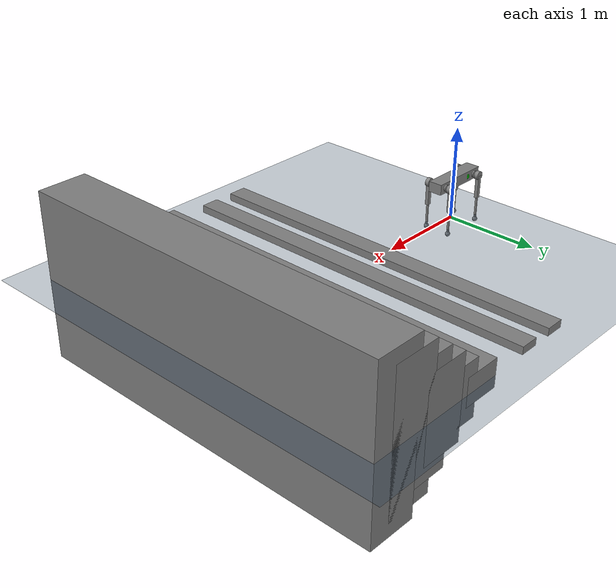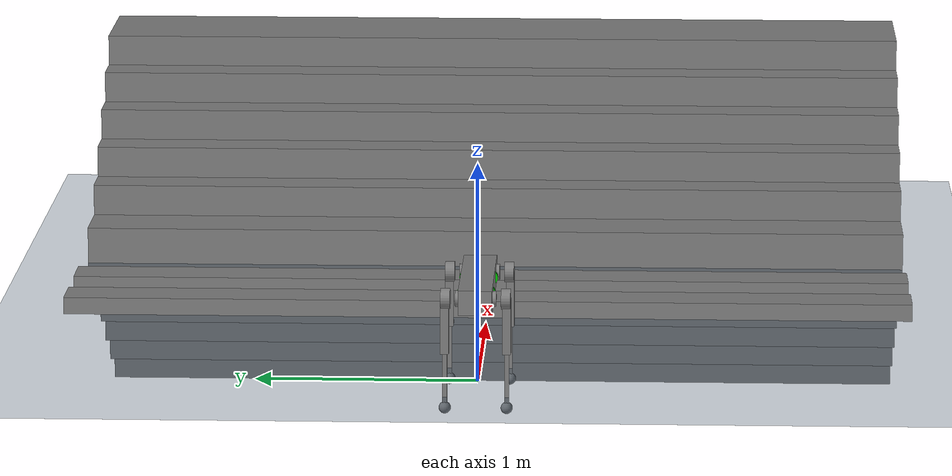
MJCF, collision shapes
<mujoco model="aliengo scene">
  <include file="robot.xml"/>

  <statistic center="0 0 0.1" extent="0.8"/>

  <visual>
    <headlight diffuse="0.6 0.6 0.6" ambient="0.3 0.3 0.3" specular="0 0 0"/>
    <rgba haze="0.15 0.25 0.35 1"/>
    <global azimuth="-130" elevation="-20"/>
  </visual>

  <asset>
    <texture type="skybox" builtin="gradient" rgb1="0.3 0.5 0.7" rgb2="0 0 0" width="512" height="3072"/>
    <texture type="2d" name="groundplane" builtin="checker" mark="edge" rgb1="0.2 0.3 0.4" rgb2="0.1 0.2 0.3"
      markrgb="0.8 0.8 0.8" width="300" height="300"/>
    <material name="groundplane" texture="groundplane" texuniform="true" texrepeat="5 5" reflectance="0.2"/>
  </asset>

  <worldbody>
    <light pos="0 0 1.5" dir="0 0 -1" directional="true"/>
    <geom name="floor" size="0 0 0.05" type="plane" material="groundplane"/>

    <geom pos="1.2 0 0.04" type="box"  size="0.1 2 0.04" quat="1.0 0 0 0"/>
    <geom pos="1.6 0 0.04" type="box"  size="0.1 2 0.04" quat="1.0 0 0 0"/>

    <geom pos="2.3 0 0.02" type="box"  size="0.2 2 0.15" quat="1.0 0 0 0"/>
    <geom pos="2.6 0 0.02" type="box"  size="0.22 2 0.3" quat="1.0 0 0 0"/>
    <geom pos="2.8 0 0.02" type="box"  size="0.23 2 0.45" quat="1.0 0 0 0"/>
    <geom pos="3 0 0.02" type="box"  size="0.24 2 0.6" quat="1.0 0 0 0"/>
    <geom pos="3.2 0 0.02" type="box"  size="0.25 2 0.75" quat="1.0 0 0 0"/>
    <geom pos="3.4 0 0.02" type="box"  size="0.26 2 0.9" quat="1.0 0 0 0"/>
  </worldbody>
</mujoco>

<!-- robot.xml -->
<mujoco model="aliengo">
	<compiler angle="radian" meshdir="meshes/"/>

	<default>
		<default class="aliengo">
			<geom friction="0.4" margin="0.001" condim="1"/>
			<joint axis="0 1 0" damping="0.1" armature="0.01" frictionloss="0.2"/>
			<motor ctrlrange="-23.7 23.7"/>
			<default class="abduction">
				<joint axis="1 0 0" range="-1.0472 1.0472"/>
			</default>
			<default class="hip">
				<default class="front_hip">
					<joint range="-1.5708 3.4907"/>
				</default>
				<default class="back_hip">
					<joint range="-0.5236 4.5379"/>
				</default>
			</default>
			<default class="knee">
				<joint range="-2.7227 -0.83776"/>
				<motor ctrlrange="-45.43 45.43"/>
			</default>
			<default class="visual">
				<geom type="mesh" contype="0" conaffinity="0" group="2" material="dark"/>
			</default>
			<default class="collision">
				<geom group="3"/>
				<default class="foot">
					<geom size="0.022" pos="-0.002 0 -0.213" priority="1" condim="6"
					      friction="0.4 0.02 0.01"/>
				</default>
			</default>
		</default>
	</default>

	<asset>
		<material name="metal" rgba=".5 .5 .5 1" shininess="0.25" specular="0"/>
		<material name="black" rgba=".1 .1 .1 1" shininess="0.25"/>
		<material name="dark" rgba="0.2 0.2 0.2 1" shininess="0.1"/>
		<material name="transparent" rgba="1 1 1 0.01" />

		<mesh name="trunk" file="trunk.stl"/>
		<mesh name="hip" file="hip.stl"/>
		<mesh name="thigh_mirror" file="thigh_mirror.stl"/>
		<mesh name="calf" file="calf.stl" scale="0.026 0.026 0.026"/>
		<mesh name="thigh" file="thigh.stl"/>
	</asset>

	<worldbody>
		<body name="base_link" pos="0 0 0.445" childclass="aliengo">
			<inertial pos="0.008811 0.003839 0.000273" quat="0 0 0 1"
			          mass="11.644"
			          diaginertia="0.107027 0.0980771 0.0244531"/>
			<freejoint/>
			<geom size="0.0005 0.0005 0.0005" type="box" contype="0" conaffinity="0" group="1" density="0"/>
			<geom type="mesh" class="visual" material="black" mesh="trunk"/>
			<geom size="0.3235 0.075 0.056" type="box" class="collision"/>
			<geom size="0.0005 0.0005 0.0005" type="box" contype="0" conaffinity="0" group="1" density="0"
			      class="collision"/>
			<geom size="0.0005 0.0005 0.0005" type="box" class="collision"/>
			<geom size="0.035 0.01" pos="0.139985 -0.051 0" quat="0.707107 0 0.707107 0" type="cylinder" contype="0"
			      conaffinity="0" group="1" density="0" rgba="0 0.8 0 1"/>
			<geom size="0.035 0.01" pos="0.139985 0.051 0" quat="0.707107 0 0.707107 0" type="cylinder" contype="0"
			      conaffinity="0" group="1" density="0" rgba="0 0.8 0 1"/>
			<geom size="0.035 0.01" pos="-0.139985 -0.051 0" quat="0.707107 0 0.707107 0" type="cylinder" contype="0"
			      conaffinity="0" group="1" density="0" rgba="0 0.8 0 1"/>
			<geom size="0.035 0.01" pos="-0.139985 0.051 0" quat="0.707107 0 0.707107 0" type="cylinder" contype="0"
			      conaffinity="0" group="1" density="0" rgba="0 0.8 0 1"/>
			<site name="imu" pos="0 0 0"/>
			<body name="FR_hip" pos="0.2407 -0.051 0">
				<inertial pos="-0.0206763 -0.0161444 -1.39762e-05" quat="0.58092 0.574831 0.412459 0.402465"
				          mass="2.139" diaginertia="0.0043606 0.0043277 0.00233028"/>
				<joint name="FR_hip_joint" pos="0 0 0" axis="1 0 0" range="-1.22173 1.22173"
				       actuatorfrcrange="-35.278 35.278"/>
				<geom quat="0 1 0 0" type="mesh" class="visual" material="dark" mesh="hip"/>
				<geom size="0.046 0.0209" pos="0 -0.083 0" quat="0.707107 0.707107 0 0" type="cylinder"
				      class="collision"/>
				<geom size="0.035 0.01" pos="0 -0.0298 0" quat="0.707107 0.707107 0 0" type="cylinder" contype="0"
				      conaffinity="0" group="1" density="0" class="collision"/>
				<body name="FR_thigh" pos="0 -0.0868 0">
					<inertial pos="-0.00464705 0.0202825 -0.039947" quat="0.994998 -0.0906147 0.0414285 -0.0071304"
					          mass="0.771" diaginertia="0.00560787 0.004847 0.00135111"/>
					<joint name="FR_thigh_joint" pos="0 0 0" axis="0 1 0" actuatorfrcrange="-35.278 35.278"/>
					<geom type="mesh" class="visual" material="dark" mesh="thigh_mirror"/>
					<geom size="0.125 0.0187 0.0215" pos="0 0 -0.125" quat="0.707107 0 0.707107 0" type="box"
					      class="collision"/>
					<geom size="0.035 0.01" pos="0 0.0997 0" quat="0.707107 0.707107 0 0" type="cylinder" contype="0"
					      conaffinity="0" group="1" density="0" class="collision"/>
					<body name="FR_calf" pos="0 0 -0.25">
						<inertial pos="0.00215606 4.88427e-05 -0.166671" quat="0.708049 0.000982931 0.00120829 0.706161"
						          mass="0.267" diaginertia="0.00269606 0.00268354 5.47714e-05"/>
						<joint name="FR_calf_joint" pos="0 0 0" axis="0 1 0" range="-2.77507 -0.645772"
						       actuatorfrcrange="-44.4 44.4"/>
						<geom class="visual" material="metal" type="mesh" mesh="calf"/>
						<geom size="0.125 0.0104 0.008" pos="0 0 -0.125" quat="0.707107 0 0.707107 0" type="box"
						      class="collision"/>
						<geom size="0.0265" pos="0 0 -0.25" class="collision"/>
						<site name="FR_touch" pos="0 0 -0.25" size="0.03" material="transparent"/>
					</body>
				</body>
			</body>
			<body name="FL_hip" pos="0.2407 0.051 0">
				<inertial pos="-0.0206763 0.0161444 -1.39762e-05" quat="0.402465 0.412459 0.574831 0.58092" mass="2.139"
				          diaginertia="0.0043606 0.0043277 0.00233028"/>
				<joint name="FL_hip_joint" pos="0 0 0" axis="1 0 0" range="-1.22173 1.22173"
				       actuatorfrcrange="-35.278 35.278"/>
				<geom type="mesh" class="visual" material="dark" mesh="hip"/>
				<geom size="0.046 0.0209" pos="0 0.083 0" quat="0.707107 0.707107 0 0" type="cylinder"
				      class="collision"/>
				<geom size="0.035 0.01" pos="0 0.0298 0" quat="0.707107 0.707107 0 0" type="cylinder" contype="0"
				      conaffinity="0" group="1" density="0" class="collision"/>
				<body name="FL_thigh" pos="0 0.0868 0">
					<inertial pos="-0.00464705 -0.0202825 -0.039947" quat="0.994998 0.0906147 0.0414285 0.0071304"
					          mass="0.771" diaginertia="0.00560787 0.004847 0.00135111"/>
					<joint name="FL_thigh_joint" pos="0 0 0" axis="0 1 0" actuatorfrcrange="-35.278 35.278"/>
					<geom type="mesh" class="visual" material="dark" mesh="thigh"/>
					<geom size="0.125 0.0187 0.0215" pos="0 0 -0.125" quat="0.707107 0 0.707107 0" type="box"
					      class="collision"/>
					<geom size="0.035 0.01" pos="0 -0.0997 0" quat="0.707107 0.707107 0 0" type="cylinder" contype="0"
					      conaffinity="0" group="1" density="0" class="collision"/>
					<body name="FL_calf" pos="0 0 -0.25">
						<inertial pos="0.00215606 4.88427e-05 -0.166671" quat="0.708049 0.000982931 0.00120829 0.706161"
						          mass="0.267" diaginertia="0.00269606 0.00268354 5.47714e-05"/>
						<joint name="FL_calf_joint" pos="0 0 0" axis="0 1 0" range="-2.77507 -0.645772"
						       actuatorfrcrange="-44.4 44.4"/>
						<geom class="visual" material="metal" type="mesh" mesh="calf"/>
						<geom size="0.125 0.0104 0.008" pos="0 0 -0.125" quat="0.707107 0 0.707107 0" type="box"
						      class="collision"/>
						<geom size="0.0265" pos="0 0 -0.25" class="collision"/>
						<site name="FL_touch" pos="0 0 -0.25" size="0.03" material="transparent"/>
					</body>
				</body>
			</body>
			<body name="RR_hip" pos="-0.2407 -0.051 0">
				<inertial pos="0.0206763 -0.0161444 -1.39762e-05" quat="0.412459 0.402465 0.58092 0.574831" mass="2.139"
				          diaginertia="0.0043606 0.0043277 0.00233028"/>
				<joint name="RR_hip_joint" pos="0 0 0" axis="1 0 0" range="-1.22173 1.22173"
				       actuatorfrcrange="-35.278 35.278"/>
				<geom quat="0 0 0 -1" type="mesh" class="visual" material="dark" mesh="hip"/>
				<geom size="0.046 0.0209" pos="0 -0.083 0" quat="0.707107 0.707107 0 0" type="cylinder"
				      class="collision"/>
				<geom size="0.035 0.01" pos="0 -0.0298 0" quat="0.707107 0.707107 0 0" type="cylinder"
				      class="collision"/>
				<body name="RR_thigh" pos="0 -0.0868 0">
					<inertial pos="-0.00464705 0.0202825 -0.039947" quat="0.994998 -0.0906147 0.0414285 -0.0071304"
					          mass="0.771" diaginertia="0.00560787 0.004847 0.00135111"/>
					<joint name="RR_thigh_joint" pos="0 0 0" axis="0 1 0" actuatorfrcrange="-35.278 35.278"/>
					<geom type="mesh" class="visual" material="dark" mesh="thigh_mirror"/>
					<geom size="0.125 0.0187 0.0215" pos="0 0 -0.125" quat="0.707107 0 0.707107 0" type="box"
					      class="collision"/>
					<geom size="0.035 0.01" pos="0 0.0997 0" quat="0.707107 0.707107 0 0" type="cylinder" contype="0"
					      conaffinity="0" group="1" density="0" class="collision"/>
					<body name="RR_calf" pos="0 0 -0.25">
						<inertial pos="0.00215606 4.88427e-05 -0.166671" quat="0.708049 0.000982931 0.00120829 0.706161"
						          mass="0.267" diaginertia="0.00269606 0.00268354 5.47714e-05"/>
						<joint name="RR_calf_joint" pos="0 0 0" axis="0 1 0" range="-2.77507 -0.645772"
						       actuatorfrcrange="-44.4 44.4"/>
						<geom class="visual" material="metal" type="mesh" mesh="calf"/>
						<geom size="0.125 0.0104 0.008" pos="0 0 -0.125" quat="0.707107 0 0.707107 0" type="box"
						      class="collision"/>
						<geom size="0.0265" pos="0 0 -0.25" class="collision"/>
						<site name="RR_touch" pos="0 0 -0.25" size="0.03" material="transparent"/>
					</body>
				</body>
			</body>
			<body name="RL_hip" pos="-0.2407 0.051 0">
				<inertial pos="0.0206763 0.0161444 -1.39762e-05" quat="0.574831 0.58092 0.402465 0.412459" mass="2.139"
				          diaginertia="0.0043606 0.0043277 0.00233028"/>
				<joint name="RL_hip_joint" pos="0 0 0" axis="1 0 0" range="-1.22173 1.22173"
				       actuatorfrcrange="-35.278 35.278"/>
				<geom quat="0 0 1 0" type="mesh" class="visual" material="dark" mesh="hip"/>
				<geom size="0.046 0.0209" pos="0 0.083 0" quat="0.707107 0.707107 0 0" type="cylinder"
				      class="collision"/>
				<geom size="0.035 0.01" pos="0 0.0298 0" quat="0.707107 0.707107 0 0" type="cylinder" contype="0"
				      conaffinity="0" group="1" density="0" class="collision"/>
				<body name="RL_thigh" pos="0 0.0868 0">
					<inertial pos="-0.00464705 -0.0202825 -0.039947" quat="0.994998 0.0906147 0.0414285 0.0071304"
					          mass="0.771" diaginertia="0.00560787 0.004847 0.00135111"/>
					<joint name="RL_thigh_joint" pos="0 0 0" axis="0 1 0" actuatorfrcrange="-35.278 35.278"/>
					<geom type="mesh" class="visual" material="dark" mesh="thigh"/>
					<geom size="0.125 0.0187 0.0215" pos="0 0 -0.125" quat="0.707107 0 0.707107 0" type="box"
					      class="collision"/>
					<geom size="0.035 0.01" pos="0 -0.0997 0" quat="0.707107 0.707107 0 0" type="cylinder" contype="0"
					      conaffinity="0" group="1" density="0" class="collision"/>
					<body name="RL_calf" pos="0 0 -0.25">
						<inertial pos="0.00215606 4.88427e-05 -0.166671" quat="0.708049 0.000982931 0.00120829 0.706161"
						          mass="0.267" diaginertia="0.00269606 0.00268354 5.47714e-05"/>
						<joint name="RL_calf_joint" pos="0 0 0" axis="0 1 0" range="-2.77507 -0.645772"
						       actuatorfrcrange="-44.4 44.4"/>
						<geom class="visual" material="metal" type="mesh" mesh="calf"/>
						<geom size="0.125 0.0104 0.008" pos="0 0 -0.125" quat="0.707107 0 0.707107 0" type="box"
						      class="collision"/>
						<geom size="0.0265" pos="0 0 -0.25" class="collision"/>
						<site name="RL_touch" pos="0 0 -0.25" size="0.03" material="transparent"/>
					</body>
				</body>
			</body>
		</body>
	</worldbody>

	<actuator>
		<motor class="abduction" name="FR_hip" joint="FR_hip_joint"/>
		<motor class="hip" name="FR_thigh" joint="FR_thigh_joint"/>
		<motor class="knee" name="FR_calf" joint="FR_calf_joint"/>
		<motor class="abduction" name="FL_hip" joint="FL_hip_joint"/>
		<motor class="hip" name="FL_thigh" joint="FL_thigh_joint"/>
		<motor class="knee" name="FL_calf" joint="FL_calf_joint"/>
		<motor class="abduction" name="RR_hip" joint="RR_hip_joint"/>
		<motor class="hip" name="RR_thigh" joint="RR_thigh_joint"/>
		<motor class="knee" name="RR_calf" joint="RR_calf_joint"/>
		<motor class="abduction" name="RL_hip" joint="RL_hip_joint"/>
		<motor class="hip" name="RL_thigh" joint="RL_thigh_joint"/>
		<motor class="knee" name="RL_calf" joint="RL_calf_joint"/>
	</actuator>

	<sensor>
		<jointpos name="FR_hip_pos" joint="FR_hip_joint"/>
		<jointpos name="FR_thigh_pos" joint="FR_thigh_joint"/>
		<jointpos name="FR_calf_pos" joint="FR_calf_joint"/>
		<jointpos name="FL_hip_pos" joint="FL_hip_joint"/>
		<jointpos name="FL_thigh_pos" joint="FL_thigh_joint"/>
		<jointpos name="FL_calf_pos" joint="FL_calf_joint"/>
		<jointpos name="RR_hip_pos" joint="RR_hip_joint"/>
		<jointpos name="RR_thigh_pos" joint="RR_thigh_joint"/>
		<jointpos name="RR_calf_pos" joint="RR_calf_joint"/>
		<jointpos name="RL_hip_pos" joint="RL_hip_joint"/>
		<jointpos name="RL_thigh_pos" joint="RL_thigh_joint"/>
		<jointpos name="RL_calf_pos" joint="RL_calf_joint"/>

		<jointvel name="FR_hip_vel" joint="FR_hip_joint"/>
		<jointvel name="FR_thigh_vel" joint="FR_thigh_joint"/>
		<jointvel name="FR_calf_vel" joint="FR_calf_joint"/>
		<jointvel name="FL_hip_vel" joint="FL_hip_joint"/>
		<jointvel name="FL_thigh_vel" joint="FL_thigh_joint"/>
		<jointvel name="FL_calf_vel" joint="FL_calf_joint"/>
		<jointvel name="RR_hip_vel" joint="RR_hip_joint"/>
		<jointvel name="RR_thigh_vel" joint="RR_thigh_joint"/>
		<jointvel name="RR_calf_vel" joint="RR_calf_joint"/>
		<jointvel name="RL_hip_vel" joint="RL_hip_joint"/>
		<jointvel name="RL_thigh_vel" joint="RL_thigh_joint"/>
		<jointvel name="RL_calf_vel" joint="RL_calf_joint"/>

		<jointactuatorfrc name="FR_hip_torque" joint="FR_hip_joint" noise="0.01"/>
		<jointactuatorfrc name="FR_thigh_torque" joint="FR_thigh_joint" noise="0.01"/>
		<jointactuatorfrc name="FR_calf_torque" joint="FR_calf_joint" noise="0.01"/>
		<jointactuatorfrc name="FL_hip_torque" joint="FL_hip_joint" noise="0.01"/>
		<jointactuatorfrc name="FL_thigh_torque" joint="FL_thigh_joint" noise="0.01"/>
		<jointactuatorfrc name="FL_calf_torque" joint="FL_calf_joint" noise="0.01"/>
		<jointactuatorfrc name="RR_hip_torque" joint="RR_hip_joint" noise="0.01"/>
		<jointactuatorfrc name="RR_thigh_torque" joint="RR_thigh_joint" noise="0.01"/>
		<jointactuatorfrc name="RR_calf_torque" joint="RR_calf_joint" noise="0.01"/>
		<jointactuatorfrc name="RL_hip_torque" joint="RL_hip_joint" noise="0.01"/>
		<jointactuatorfrc name="RL_thigh_torque" joint="RL_thigh_joint" noise="0.01"/>
		<jointactuatorfrc name="RL_calf_torque" joint="RL_calf_joint" noise="0.01"/>

		<framequat name="imu_quat" objtype="site" objname="imu"/>
		<gyro name="imu_gyro" site="imu"/>
		<accelerometer name="imu_acc" site="imu"/>

		<framepos name="frame_pos" objtype="site" objname="imu"/>
		<framelinvel name="frame_vel" objtype="site" objname="imu"/>

		<touch name="FR_touch" site="FR_touch"/>
		<touch name="FL_touch" site="FL_touch"/>
		<touch name="RR_touch" site="RR_touch"/>
		<touch name="RL_touch" site="RL_touch"/>
	</sensor>

	<keyframe>
		<key name="home"
		     ctrl="0 0.9 -1.8 0 0.9 -1.8 0 0.9 -1.8 0 0.9 -1.8"/>
	</keyframe>
</mujoco>
